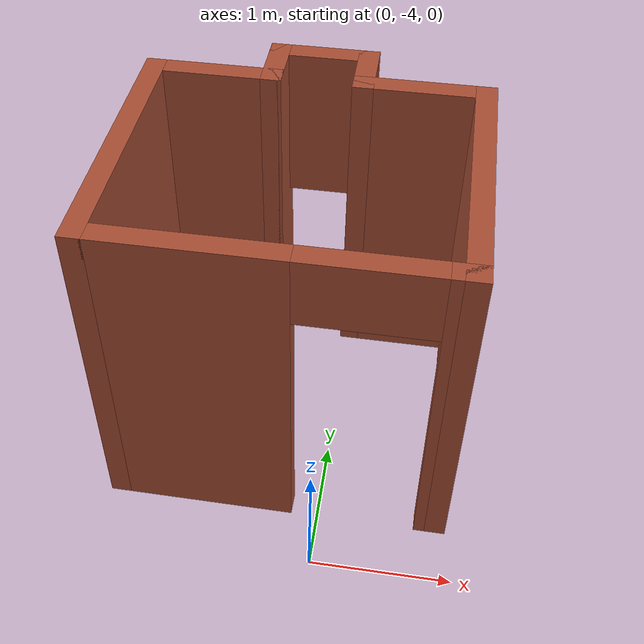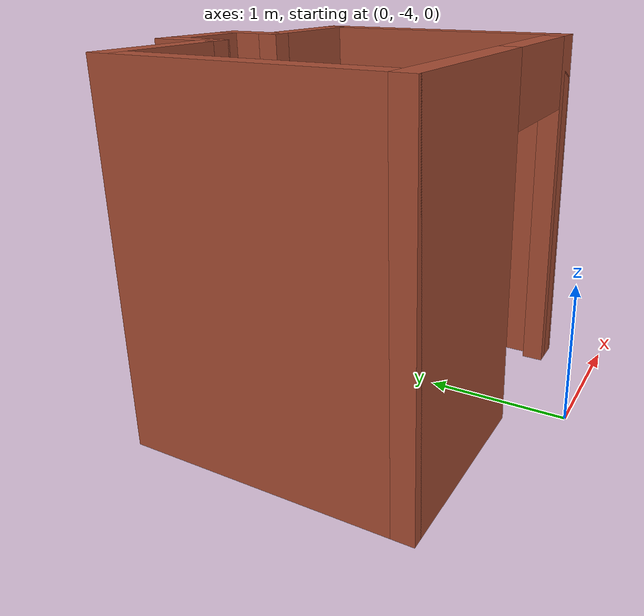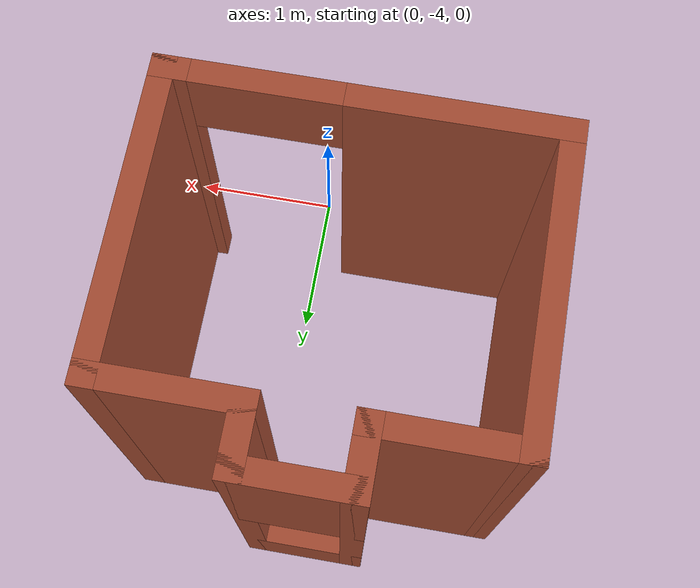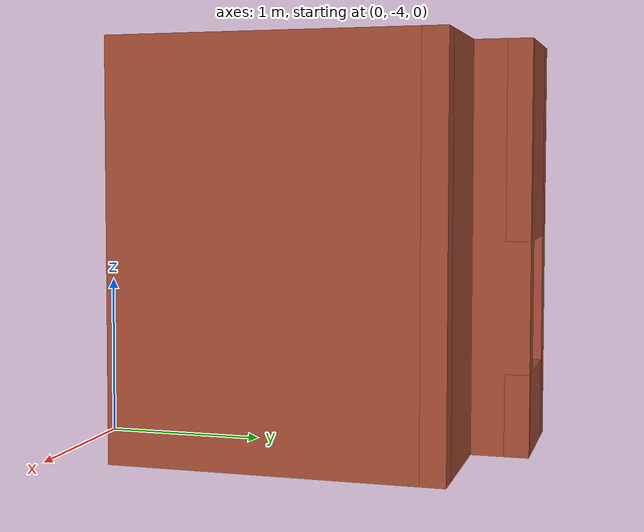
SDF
<?xml version='1.0'?>
<sdf version='1.7'>
  <model name='room'>
    <pose>-0.315 -1.8075 0 0 -0 0</pose>
    <link name='Wall_0'>
      <pose>0 -1.7325 0 0 -0 0</pose>
      <visual name='Wall_0_Visual_0'>
        <pose>-0.56392 0 1.25 0 -0 0</pose>
        <geometry>
          <box>
            <size>1.37216 0.15 2.5</size>
          </box>
        </geometry>
        <material>
          <script>
            <uri>file://media/materials/scripts/gazebo.material</uri>
            <name>Gazebo/Bricks</name>
          </script>
          <ambient>1 1 1 1</ambient>
        </material>
        <meta>
          <layer>0</layer>
        </meta>
      </visual>
      <collision name='Wall_0_Collision_0'>
        <geometry>
          <box>
            <size>1.37216 0.15 2.5</size>
          </box>
        </geometry>
        <pose>-0.56392 0 1.25 0 -0 0</pose>
      </collision>
      <visual name='Wall_0_Visual_1'>
        <pose>1.13608 0 1.25 0 -0 0</pose>
        <geometry>
          <box>
            <size>0.22784 0.15 2.5</size>
          </box>
        </geometry>
        <material>
          <script>
            <uri>file://media/materials/scripts/gazebo.material</uri>
            <name>Gazebo/Bricks</name>
          </script>
          <ambient>1 1 1 1</ambient>
        </material>
        <meta>
          <layer>0</layer>
        </meta>
      </visual>
      <collision name='Wall_0_Collision_1'>
        <geometry>
          <box>
            <size>0.22784 0.15 2.5</size>
          </box>
        </geometry>
        <pose>1.13608 0 1.25 0 -0 0</pose>
      </collision>
      <visual name='Wall_0_Visual_2'>
        <pose>0.57216 0 2.25 0 -0 0</pose>
        <geometry>
          <box>
            <size>0.9 0.15 0.5</size>
          </box>
        </geometry>
        <material>
          <script>
            <uri>file://media/materials/scripts/gazebo.material</uri>
            <name>Gazebo/Bricks</name>
          </script>
          <ambient>1 1 1 1</ambient>
        </material>
        <meta>
          <layer>0</layer>
        </meta>
      </visual>
      <collision name='Wall_0_Collision_2'>
        <geometry>
          <box>
            <size>0.9 0.15 0.5</size>
          </box>
        </geometry>
        <pose>0.57216 0 2.25 0 -0 0</pose>
      </collision>
    </link>
    <link name='Wall_1'>
      <collision name='Wall_1_Collision'>
        <geometry>
          <box>
            <size>2 0.15 2.5</size>
          </box>
        </geometry>
        <pose>0 0 1.25 0 -0 0</pose>
      </collision>
      <visual name='Wall_1_Visual'>
        <pose>0 0 1.25 0 -0 0</pose>
        <geometry>
          <box>
            <size>2 0.15 2.5</size>
          </box>
        </geometry>
        <material>
          <script>
            <uri>file://media/materials/scripts/gazebo.material</uri>
            <name>Gazebo/Bricks</name>
          </script>
          <ambient>1 1 1 1</ambient>
        </material>
        <meta>
          <layer>0</layer>
        </meta>
      </visual>
      <pose>1.175 -0.8075 0 0 -0 1.5708</pose>
    </link>
    <link name='Wall_12'>
      <pose>0 0.4675 0 0 -0 0</pose>
      <visual name='Wall_12_Visual_0'>
        <pose>-0.39892 0 1.25 0 -0 0</pose>
        <geometry>
          <box>
            <size>0.00216 0.15 2.5</size>
          </box>
        </geometry>
        <material>
          <script>
            <uri>file://media/materials/scripts/gazebo.material</uri>
            <name>Gazebo/Bricks</name>
          </script>
          <ambient>1 1 1 1</ambient>
        </material>
        <meta>
          <layer>0</layer>
        </meta>
      </visual>
      <collision name='Wall_12_Collision_0'>
        <geometry>
          <box>
            <size>0.00216 0.15 2.5</size>
          </box>
        </geometry>
        <pose>-0.39892 0 1.25 0 -0 0</pose>
      </collision>
      <visual name='Wall_12_Visual_1'>
        <pose>0.00108 0 0.25 0 -0 0</pose>
        <geometry>
          <box>
            <size>0.79784 0.15 0.5</size>
          </box>
        </geometry>
        <material>
          <script>
            <uri>file://media/materials/scripts/gazebo.material</uri>
            <name>Gazebo/Bricks</name>
          </script>
          <ambient>1 1 1 1</ambient>
        </material>
        <meta>
          <layer>0</layer>
        </meta>
      </visual>
      <collision name='Wall_12_Collision_1'>
        <geometry>
          <box>
            <size>0.79784 0.15 0.5</size>
          </box>
        </geometry>
        <pose>0.00108 0 0.25 0 -0 0</pose>
      </collision>
      <visual name='Wall_12_Visual_2'>
        <pose>0.00108 0 1.9 0 -0 0</pose>
        <geometry>
          <box>
            <size>0.79784 0.15 1.2</size>
          </box>
        </geometry>
        <material>
          <script>
            <uri>file://media/materials/scripts/gazebo.material</uri>
            <name>Gazebo/Bricks</name>
          </script>
          <ambient>1 1 1 1</ambient>
        </material>
        <meta>
          <layer>0</layer>
        </meta>
      </visual>
      <collision name='Wall_12_Collision_2'>
        <geometry>
          <box>
            <size>0.79784 0.15 1.2</size>
          </box>
        </geometry>
        <pose>0.00108 0 1.9 0 -0 0</pose>
      </collision>
    </link>
    <link name='Wall_2'>
      <collision name='Wall_2_Collision'>
        <geometry>
          <box>
            <size>1 0.15 2.5</size>
          </box>
        </geometry>
        <pose>0 0 1.25 0 -0 0</pose>
      </collision>
      <visual name='Wall_2_Visual'>
        <pose>0 0 1.25 0 -0 0</pose>
        <geometry>
          <box>
            <size>1 0.15 2.5</size>
          </box>
        </geometry>
        <material>
          <script>
            <uri>file://media/materials/scripts/gazebo.material</uri>
            <name>Gazebo/Bricks</name>
          </script>
          <ambient>1 1 1 1</ambient>
        </material>
        <meta>
          <layer>0</layer>
        </meta>
      </visual>
      <pose>0.75 0.1175 0 0 -0 3.14159</pose>
    </link>
    <link name='Wall_3'>
      <collision name='Wall_3_Collision'>
        <geometry>
          <box>
            <size>0.5 0.15 2.5</size>
          </box>
        </geometry>
        <pose>0 0 1.25 0 -0 0</pose>
      </collision>
      <visual name='Wall_3_Visual'>
        <pose>0 0 1.25 0 -0 0</pose>
        <geometry>
          <box>
            <size>0.5 0.15 2.5</size>
          </box>
        </geometry>
        <material>
          <script>
            <uri>file://media/materials/scripts/gazebo.material</uri>
            <name>Gazebo/Bricks</name>
          </script>
          <ambient>1 1 1 1</ambient>
        </material>
        <meta>
          <layer>0</layer>
        </meta>
      </visual>
      <pose>0.325 0.2925 0 0 -0 1.5708</pose>
    </link>
    <link name='Wall_7'>
      <collision name='Wall_7_Collision'>
        <geometry>
          <box>
            <size>2 0.15 2.5</size>
          </box>
        </geometry>
        <pose>0 0 1.25 0 -0 0</pose>
      </collision>
      <visual name='Wall_7_Visual'>
        <pose>0 0 1.25 0 -0 0</pose>
        <geometry>
          <box>
            <size>2 0.15 2.5</size>
          </box>
        </geometry>
        <material>
          <script>
            <uri>file://media/materials/scripts/gazebo.material</uri>
            <name>Gazebo/Bricks</name>
          </script>
          <ambient>1 1 1 1</ambient>
        </material>
        <meta>
          <layer>0</layer>
        </meta>
      </visual>
      <pose>-1.175 -0.8075 0 0 -0 1.5708</pose>
    </link>
    <link name='Wall_8'>
      <collision name='Wall_8_Collision'>
        <geometry>
          <box>
            <size>1 0.15 2.5</size>
          </box>
        </geometry>
        <pose>0 0 1.25 0 -0 0</pose>
      </collision>
      <visual name='Wall_8_Visual'>
        <pose>0 0 1.25 0 -0 0</pose>
        <geometry>
          <box>
            <size>1 0.15 2.5</size>
          </box>
        </geometry>
        <material>
          <script>
            <uri>file://media/materials/scripts/gazebo.material</uri>
            <name>Gazebo/Bricks</name>
          </script>
          <ambient>1 1 1 1</ambient>
        </material>
        <meta>
          <layer>0</layer>
        </meta>
      </visual>
      <pose>-0.75 0.1175 0 0 -0 0</pose>
    </link>
    <link name='Wall_9'>
      <collision name='Wall_9_Collision'>
        <geometry>
          <box>
            <size>0.5 0.15 2.5</size>
          </box>
        </geometry>
        <pose>0 0 1.25 0 -0 0</pose>
      </collision>
      <visual name='Wall_9_Visual'>
        <pose>0 0 1.25 0 -0 0</pose>
        <geometry>
          <box>
            <size>0.5 0.15 2.5</size>
          </box>
        </geometry>
        <material>
          <script>
            <uri>file://media/materials/scripts/gazebo.material</uri>
            <name>Gazebo/Bricks</name>
          </script>
          <ambient>1 1 1 1</ambient>
        </material>
        <meta>
          <layer>0</layer>
        </meta>
      </visual>
      <pose>-0.325 0.2925 0 0 -0 1.5708</pose>
    </link>
    <static>1</static>
  </model>
</sdf>
